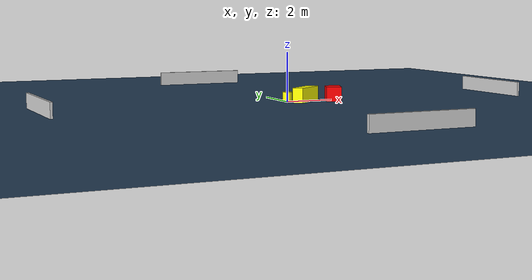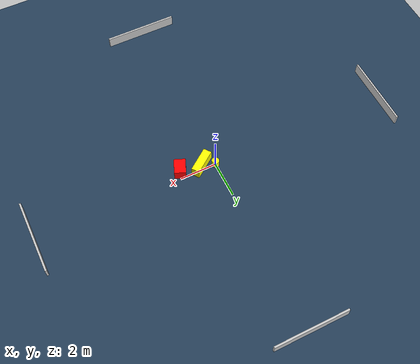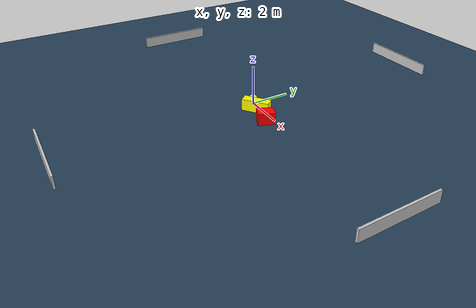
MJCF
<?xml version="1.0" ?>
<mujoco model="generated_environment">
  <option timestep="0.01" integrator="RK4" cone="elliptic"/>
  <default>
    <geom density="1"/>
  </default>
  <asset>
    <texture builtin="gradient" height="3072" name="skybox" rgb1="0.3 0.5 0.7" rgb2="0 0 0" type="skybox" width="512"/>
    <texture builtin="checker" height="300" name="groundplane" rgb1="0.2 0.3 0.4" rgb2="0.1 0.2 0.3" type="2d" width="300"/>
    <material name="groundplane" reflectance="0.2" texrepeat="5 5" texture="groundplane"/>
  </asset>
  <worldbody>
    <light dir="0 0 -1" directional="true" pos="0 0 1.5"/>
    <geom condim="3" friction="0.5 0.005 0.001" material="groundplane" name="floor" pos="0 0 0" size="0 0 0.05" type="plane"/>
    <body name="walls">
      <geom name="wall_1" condim="4" pos="-10.0 0.0 0.3" rgba="0.800000011920929 0.800000011920929 0.800000011920929 1.0" size="0.05 2.0 0.3" type="box"/>
      <geom name="wall_2" condim="4" pos="10.0 0.0 0.3" rgba="0.800000011920929 0.800000011920929 0.800000011920929 1.0" size="0.05 2.0 0.3" type="box"/>
      <geom name="wall_3" condim="4" pos="0.0 -10.0 0.3" rgba="0.800000011920929 0.800000011920929 0.800000011920929 1.0" size="2.0 0.05 0.3" type="box"/>
      <geom name="wall_4" condim="4" pos="0.0 10.0 0.3" rgba="0.800000011920929 0.800000011920929 0.800000011920929 1.0" size="2.0 0.05 0.3" type="box"/>
    </body>
    <body name="robot">
      <joint name="joint_x" type="slide" pos="0 0 0" axis="1 0 0"/>
      <joint name="joint_y" type="slide" pos="0 0 0" axis="0 1 0"/>
      <geom name="robot" type="cylinder" pos="0.0 0.0 0.2" size="0.2 0.2 0.0" mass="5.0" friction="1.0 0.005 0.0001" condim="4" rgba="1.0 1.0 0.0 1.0"/>
    </body>
    <body name="obstacle_1_movable">
      <geom name="obstacle_1_movable" condim="4" pos="0.7039036853420753 -0.22833524114509296 0.3" euler="0 0 36.43078747712812" friction="0.0 0.005 0.001" rgba="1.0 1.0 0.0 1.0" size="0.6866204315510678 0.2228012602418595 0.3" type="box" mass="0.1"/>
      <joint type="free"/>
    </body>
    <body name="obstacle_2_static">
      <geom name="obstacle_2_static" condim="4" pos="1.8611516458579611 -0.4258477826419815 0.3" euler="0 0 247.89143949431246" friction="0.0 0.005 0.001" rgba="1.0 0.0 0.0 1.0" size="0.41251539554154304 0.3096339714964923 0.3" type="box"/>
    </body>
  </worldbody>
  <actuator>
    <motor name="actuator_x" joint="joint_x" gear="1" ctrlrange="-1 1"/>
    <motor name="actuator_y" joint="joint_y" gear="1" ctrlrange="-1 1"/>
  </actuator>
</mujoco>
